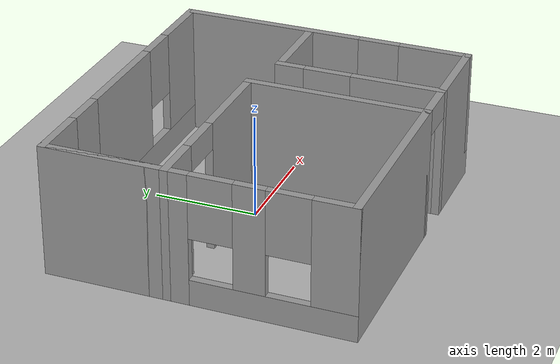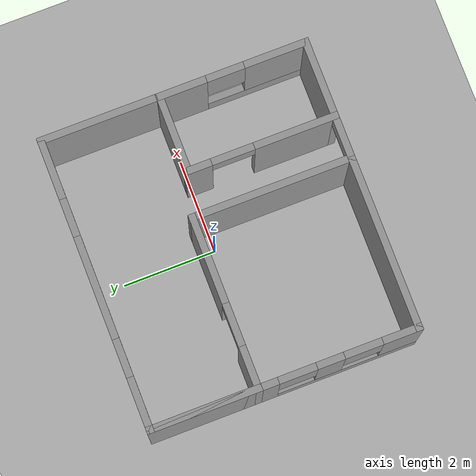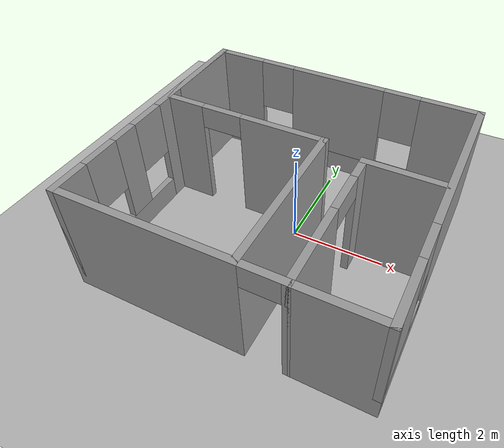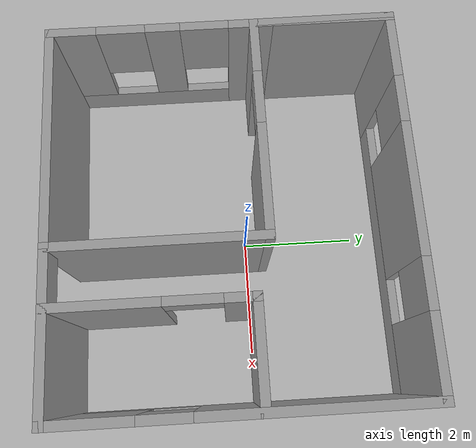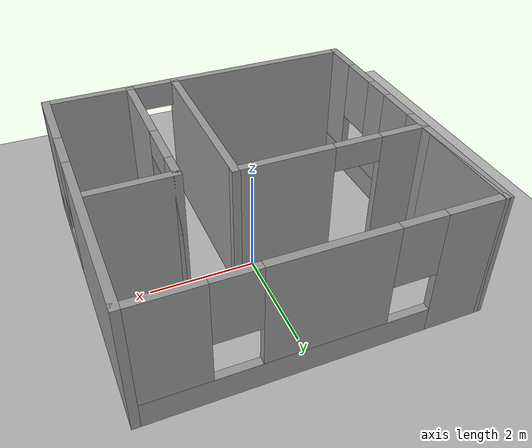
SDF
<sdf version="1.9">
 <world name="default">
  <gravity>0 0 -9.8</gravity>
  <magnetic_field>6e-06 2.3e-05 -4.2e-05</magnetic_field>
  <atmosphere type="adiabatic"/>
  <physics type="ode">
   <max_step_size>0.001</max_step_size>
   <real_time_factor>1</real_time_factor>
   <real_time_update_rate>1000</real_time_update_rate>
  </physics>
  <scene><ambient>0.4 0.4 0.4 1</ambient><background>0.7 0.7 0.7 1</background><shadows>true</shadows></scene>
  <model name="Untitled">
   <pose>-0.118681 -0.255136 0 0 -0 0</pose>
   <link name="Wall_0">
    <pose>-3.05 0 0 0 0 -1.5708</pose>
    <visual name="Wall_0_Visual_0">
     <pose>-1.5034 0 1.25 0 -0 0</pose>
     <geometry><box><size>2.7432 0.15 2.5</size></box></geometry>
     <material>
      <script><uri>file://media/materials/scripts/gazebo.material</uri><name>Gazebo/Grey</name></script>
      <ambient>1 1 1 1</ambient>
     </material>
     <meta><layer>0</layer></meta>
    </visual>
    <collision name="Wall_0_Collision_0">
     <geometry><box><size>2.7432 0.15 2.5</size></box></geometry>
     <pose>-1.5034 0 1.25 0 -0 0</pose>
    </collision>
    <visual name="Wall_0_Visual_1">
     <pose>1.3716 0 0.25 0 -0 0</pose>
     <geometry><box><size>3.0068 0.15 0.5</size></box></geometry>
     <material>
      <script><uri>file://media/materials/scripts/gazebo.material</uri><name>Gazebo/Grey</name></script>
      <ambient>1 1 1 1</ambient>
     </material>
     <meta><layer>0</layer></meta>
    </visual>
    <collision name="Wall_0_Collision_1">
     <geometry><box><size>3.0068 0.15 0.5</size></box></geometry>
     <pose>1.3716 0 0.25 0 -0 0</pose>
    </collision>
    <visual name="Wall_0_Visual_2">
     <pose>0.9559 0 1.5 0 -0 0</pose>
     <geometry><box><size>0.5754 0.15 2</size></box></geometry>
     <material>
      <script><uri>file://media/materials/scripts/gazebo.material</uri><name>Gazebo/Grey</name></script>
      <ambient>1 1 1 1</ambient>
     </material>
     <meta><layer>0</layer></meta>
    </visual>
    <collision name="Wall_0_Collision_2">
     <geometry><box><size>0.5754 0.15 2</size></box></geometry>
     <pose>0.9559 0 1.5 0 -0 0</pose>
    </collision>
    <visual name="Wall_0_Visual_3">
     <pose>2.4593 0 1.5 0 -0 0</pose>
     <geometry><box><size>0.8314 0.15 2</size></box></geometry>
     <material>
      <script><uri>file://media/materials/scripts/gazebo.material</uri><name>Gazebo/Grey</name></script>
      <ambient>1 1 1 1</ambient>
     </material>
     <meta><layer>0</layer></meta>
    </visual>
    <collision name="Wall_0_Collision_3">
     <geometry><box><size>0.8314 0.15 2</size></box></geometry>
     <pose>2.4593 0 1.5 0 -0 0</pose>
    </collision>
    <visual name="Wall_0_Visual_4">
     <pose>0.2682 0 1.9 0 -0 0</pose>
     <geometry><box><size>0.8 0.15 1.2</size></box></geometry>
     <material>
      <script><uri>file://media/materials/scripts/gazebo.material</uri><name>Gazebo/Grey</name></script>
      <ambient>1 1 1 1</ambient>
     </material>
     <meta><layer>0</layer></meta>
    </visual>
    <collision name="Wall_0_Collision_4">
     <geometry><box><size>0.8 0.15 1.2</size></box></geometry>
     <pose>0.2682 0 1.9 0 -0 0</pose>
    </collision>
    <visual name="Wall_0_Visual_5">
     <pose>1.6436 0 1.9 0 -0 0</pose>
     <geometry><box><size>0.8 0.15 1.2</size></box></geometry>
     <material>
      <script><uri>file://media/materials/scripts/gazebo.material</uri><name>Gazebo/Grey</name></script>
      <ambient>1 1 1 1</ambient>
     </material>
     <meta><layer>0</layer></meta>
    </visual>
    <collision name="Wall_0_Collision_5">
     <geometry><box><size>0.8 0.15 1.2</size></box></geometry>
     <pose>1.6436 0 1.9 0 -0 0</pose>
    </collision>
    <inertial>
     <mass>1</mass>
     <inertia><ixx>1</ixx><ixy>0</ixy><ixz>0</ixz><iyy>1</iyy><iyz>0</iyz><izz>1</izz></inertia>
    </inertial>
   </link>
   <link name="Wall_1">
    <collision name="Wall_1_Collision">
     <geometry><box><size>3.75 0.15 2.5</size></box></geometry>
     <pose>0 0 1.25 0 -0 0</pose>
    </collision>
    <visual name="Wall_1_Visual">
     <pose>0 0 1.25 0 -0 0</pose>
     <geometry><box><size>3.75 0.15 2.5</size></box></geometry>
     <material>
      <script><uri>file://media/materials/scripts/gazebo.material</uri><name>Gazebo/Grey</name></script>
      <ambient>1 1 1 1</ambient>
     </material>
     <meta><layer>0</layer></meta>
    </visual>
    <pose>-1.25 -2.8 0 0 -0 0</pose>
    <inertial>
     <mass>1</mass>
     <inertia><ixx>1</ixx><ixy>0</ixy><ixz>0</ixz><iyy>1</iyy><iyz>0</iyz><izz>1</izz></inertia>
    </inertial>
   </link>
   <link name="Wall_11">
    <pose>1 -2.8 0 0 -0 0</pose>
    <visual name="Wall_11_Visual_0">
     <pose>-0.47585 0 1.25 0 -0 0</pose>
     <geometry><box><size>0.0983 0.15 2.5</size></box></geometry>
     <material>
      <script><uri>file://media/materials/scripts/gazebo.material</uri><name>Gazebo/Grey</name></script>
      <ambient>1 1 1 1</ambient>
     </material>
     <meta><layer>0</layer></meta>
    </visual>
    <collision name="Wall_11_Collision_0">
     <geometry><box><size>0.0983 0.15 2.5</size></box></geometry>
     <pose>-0.47585 0 1.25 0 -0 0</pose>
    </collision>
    <visual name="Wall_11_Visual_1">
     <pose>0.49915 0 1.25 0 -0 0</pose>
     <geometry><box><size>0.0517 0.15 2.5</size></box></geometry>
     <material>
      <script><uri>file://media/materials/scripts/gazebo.material</uri><name>Gazebo/Grey</name></script>
      <ambient>1 1 1 1</ambient>
     </material>
     <meta><layer>0</layer></meta>
    </visual>
    <collision name="Wall_11_Collision_1">
     <geometry><box><size>0.0517 0.15 2.5</size></box></geometry>
     <pose>0.49915 0 1.25 0 -0 0</pose>
    </collision>
    <visual name="Wall_11_Visual_2">
     <pose>0.0233 0 2.25 0 -0 0</pose>
     <geometry><box><size>0.9 0.15 0.5</size></box></geometry>
     <material>
      <script><uri>file://media/materials/scripts/gazebo.material</uri><name>Gazebo/Grey</name></script>
      <ambient>1 1 1 1</ambient>
     </material>
     <meta><layer>0</layer></meta>
    </visual>
    <collision name="Wall_11_Collision_2">
     <geometry><box><size>0.9 0.15 0.5</size></box></geometry>
     <pose>0.0233 0 2.25 0 -0 0</pose>
    </collision>
    <inertial>
     <mass>1</mass>
     <inertia><ixx>1</ixx><ixy>0</ixy><ixz>0</ixz><iyy>1</iyy><iyz>0</iyz><izz>1</izz></inertia>
    </inertial>
   </link>
   <link name="Wall_2">
    <collision name="Wall_2_Collision">
     <geometry><box><size>3.5 0.15 2.5</size></box></geometry>
     <pose>0 0 1.25 0 -0 0</pose>
    </collision>
    <visual name="Wall_2_Visual">
     <pose>0 0 1.25 0 -0 0</pose>
     <geometry><box><size>3.5 0.15 2.5</size></box></geometry>
     <material>
      <script><uri>file://media/materials/scripts/gazebo.material</uri><name>Gazebo/Grey</name></script>
      <ambient>1 1 1 1</ambient>
     </material>
     <meta><layer>0</layer></meta>
    </visual>
    <pose>0.55 -1.125 0 0 -0 1.5708</pose>
    <inertial>
     <mass>1</mass>
     <inertia><ixx>1</ixx><ixy>0</ixy><ixz>0</ixz><iyy>1</iyy><iyz>0</iyz><izz>1</izz></inertia>
    </inertial>
   </link>
   <link name="Wall_3">
    <pose>-1.25 0.55 0 0 -0 3.14159</pose>
    <visual name="Wall_3_Visual_0">
     <pose>-0.930362 0 1.25 0 -0 0</pose>
     <geometry><box><size>1.88928 0.15 2.5</size></box></geometry>
     <material>
      <script><uri>file://media/materials/scripts/gazebo.material</uri><name>Gazebo/Grey</name></script>
      <ambient>1 1 1 1</ambient>
     </material>
     <meta><layer>0</layer></meta>
    </visual>
    <collision name="Wall_3_Collision_0">
     <geometry><box><size>1.88928 0.15 2.5</size></box></geometry>
     <pose>-0.930362 0 1.25 0 -0 0</pose>
    </collision>
    <visual name="Wall_3_Visual_1">
     <pose>1.39464 0 1.25 0 -0 0</pose>
     <geometry><box><size>0.960725 0.15 2.5</size></box></geometry>
     <material>
      <script><uri>file://media/materials/scripts/gazebo.material</uri><name>Gazebo/Grey</name></script>
      <ambient>1 1 1 1</ambient>
     </material>
     <meta><layer>0</layer></meta>
    </visual>
    <collision name="Wall_3_Collision_1">
     <geometry><box><size>0.960725 0.15 2.5</size></box></geometry>
     <pose>1.39464 0 1.25 0 -0 0</pose>
    </collision>
    <visual name="Wall_3_Visual_2">
     <pose>0.464275 0 2.25 0 -0 0</pose>
     <geometry><box><size>0.9 0.15 0.5</size></box></geometry>
     <material>
      <script><uri>file://media/materials/scripts/gazebo.material</uri><name>Gazebo/Grey</name></script>
      <ambient>1 1 1 1</ambient>
     </material>
     <meta><layer>0</layer></meta>
    </visual>
    <collision name="Wall_3_Collision_2">
     <geometry><box><size>0.9 0.15 0.5</size></box></geometry>
     <pose>0.464275 0 2.25 0 -0 0</pose>
    </collision>
    <inertial>
     <mass>1</mass>
     <inertia><ixx>1</ixx><ixy>0</ixy><ixz>0</ixz><iyy>1</iyy><iyz>0</iyz><izz>1</izz></inertia>
    </inertial>
   </link>
   <link name="Wall_4">
    <collision name="Wall_4_Collision">
     <geometry><box><size>2.4 0.15 2.5</size></box></geometry>
     <pose>0 0 1.25 0 -0 0</pose>
    </collision>
    <visual name="Wall_4_Visual">
     <pose>0 0 1.25 0 -0 0</pose>
     <geometry><box><size>2.4 0.15 2.5</size></box></geometry>
     <material>
      <script><uri>file://media/materials/scripts/gazebo.material</uri><name>Gazebo/Grey</name></script>
      <ambient>1 1 1 1</ambient>
     </material>
     <meta><layer>0</layer></meta>
    </visual>
    <pose>-3.05 1.675 0 0 -0 1.5708</pose>
    <inertial>
     <mass>1</mass>
     <inertia><ixx>1</ixx><ixy>0</ixy><ixz>0</ixz><iyy>1</iyy><iyz>0</iyz><izz>1</izz></inertia>
    </inertial>
   </link>
   <link name="Wall_5">
    <pose>0 2.8 0 0 -0 0</pose>
    <visual name="Wall_5_Visual_0">
     <pose>-2.54029 0 1.25 0 -0 0</pose>
     <geometry><box><size>1.16942 0.15 2.5</size></box></geometry>
     <material>
      <script><uri>file://media/materials/scripts/gazebo.material</uri><name>Gazebo/Grey</name></script>
      <ambient>1 1 1 1</ambient>
     </material>
     <meta><layer>0</layer></meta>
    </visual>
    <collision name="Wall_5_Collision_0">
     <geometry><box><size>1.16942 0.15 2.5</size></box></geometry>
     <pose>-2.54029 0 1.25 0 -0 0</pose>
    </collision>
    <visual name="Wall_5_Visual_1">
     <pose>0.584713 0 0.25 0 -0 0</pose>
     <geometry><box><size>5.08057 0.15 0.5</size></box></geometry>
     <material>
      <script><uri>file://media/materials/scripts/gazebo.material</uri><name>Gazebo/Grey</name></script>
      <ambient>1 1 1 1</ambient>
     </material>
     <meta><layer>0</layer></meta>
    </visual>
    <collision name="Wall_5_Collision_1">
     <geometry><box><size>5.08057 0.15 0.5</size></box></geometry>
     <pose>0.584713 0 0.25 0 -0 0</pose>
    </collision>
    <visual name="Wall_5_Visual_2">
     <pose>-0.074375 0 1.5 0 -0 0</pose>
     <geometry><box><size>2.1624 0.15 2</size></box></geometry>
     <material>
      <script><uri>file://media/materials/scripts/gazebo.material</uri><name>Gazebo/Grey</name></script>
      <ambient>1 1 1 1</ambient>
     </material>
     <meta><layer>0</layer></meta>
    </visual>
    <collision name="Wall_5_Collision_2">
     <geometry><box><size>2.1624 0.15 2</size></box></geometry>
     <pose>-0.074375 0 1.5 0 -0 0</pose>
    </collision>
    <visual name="Wall_5_Visual_3">
     <pose>2.46591 0 1.5 0 -0 0</pose>
     <geometry><box><size>1.31818 0.15 2</size></box></geometry>
     <material>
      <script><uri>file://media/materials/scripts/gazebo.material</uri><name>Gazebo/Grey</name></script>
      <ambient>1 1 1 1</ambient>
     </material>
     <meta><layer>0</layer></meta>
    </visual>
    <collision name="Wall_5_Collision_3">
     <geometry><box><size>1.31818 0.15 2</size></box></geometry>
     <pose>2.46591 0 1.5 0 -0 0</pose>
    </collision>
    <visual name="Wall_5_Visual_4">
     <pose>-1.55557 0 1.9 0 -0 0</pose>
     <geometry><box><size>0.8 0.15 1.2</size></box></geometry>
     <material>
      <script><uri>file://media/materials/scripts/gazebo.material</uri><name>Gazebo/Grey</name></script>
      <ambient>1 1 1 1</ambient>
     </material>
     <meta><layer>0</layer></meta>
    </visual>
    <collision name="Wall_5_Collision_4">
     <geometry><box><size>0.8 0.15 1.2</size></box></geometry>
     <pose>-1.55557 0 1.9 0 -0 0</pose>
    </collision>
    <visual name="Wall_5_Visual_5">
     <pose>1.40682 0 1.9 0 -0 0</pose>
     <geometry><box><size>0.8 0.15 1.2</size></box></geometry>
     <material>
      <script><uri>file://media/materials/scripts/gazebo.material</uri><name>Gazebo/Grey</name></script>
      <ambient>1 1 1 1</ambient>
     </material>
     <meta><layer>0</layer></meta>
    </visual>
    <collision name="Wall_5_Collision_5">
     <geometry><box><size>0.8 0.15 1.2</size></box></geometry>
     <pose>1.40682 0 1.9 0 -0 0</pose>
    </collision>
    <inertial>
     <mass>1</mass>
     <inertia><ixx>1</ixx><ixy>0</ixy><ixz>0</ixz><iyy>1</iyy><iyz>0</iyz><izz>1</izz></inertia>
    </inertial>
   </link>
   <link name="Wall_6">
    <pose>3.05 0 0 0 0 -1.5708</pose>
    <visual name="Wall_6_Visual_0">
     <pose>-1.09343 0 1.25 0 -0 0</pose>
     <geometry><box><size>3.56315 0.15 2.5</size></box></geometry>
     <material>
      <script><uri>file://media/materials/scripts/gazebo.material</uri><name>Gazebo/Grey</name></script>
      <ambient>1 1 1 1</ambient>
     </material>
     <meta><layer>0</layer></meta>
    </visual>
    <collision name="Wall_6_Collision_0">
     <geometry><box><size>3.56315 0.15 2.5</size></box></geometry>
     <pose>-1.09343 0 1.25 0 -0 0</pose>
    </collision>
    <visual name="Wall_6_Visual_1">
     <pose>1.78157 0 0.25 0 -0 0</pose>
     <geometry><box><size>2.18685 0.15 0.5</size></box></geometry>
     <material>
      <script><uri>file://media/materials/scripts/gazebo.material</uri><name>Gazebo/Grey</name></script>
      <ambient>1 1 1 1</ambient>
     </material>
     <meta><layer>0</layer></meta>
    </visual>
    <collision name="Wall_6_Collision_1">
     <geometry><box><size>2.18685 0.15 0.5</size></box></geometry>
     <pose>1.78157 0 0.25 0 -0 0</pose>
    </collision>
    <visual name="Wall_6_Visual_2">
     <pose>2.18158 0 1.5 0 -0 0</pose>
     <geometry><box><size>1.38685 0.15 2</size></box></geometry>
     <material>
      <script><uri>file://media/materials/scripts/gazebo.material</uri><name>Gazebo/Grey</name></script>
      <ambient>1 1 1 1</ambient>
     </material>
     <meta><layer>0</layer></meta>
    </visual>
    <collision name="Wall_6_Collision_2">
     <geometry><box><size>1.38685 0.15 2</size></box></geometry>
     <pose>2.18158 0 1.5 0 -0 0</pose>
    </collision>
    <visual name="Wall_6_Visual_3">
     <pose>1.08815 0 1.9 0 -0 0</pose>
     <geometry><box><size>0.8 0.15 1.2</size></box></geometry>
     <material>
      <script><uri>file://media/materials/scripts/gazebo.material</uri><name>Gazebo/Grey</name></script>
      <ambient>1 1 1 1</ambient>
     </material>
     <meta><layer>0</layer></meta>
    </visual>
    <collision name="Wall_6_Collision_3">
     <geometry><box><size>0.8 0.15 1.2</size></box></geometry>
     <pose>1.08815 0 1.9 0 -0 0</pose>
    </collision>
    <inertial>
     <mass>1</mass>
     <inertia><ixx>1</ixx><ixy>0</ixy><ixz>0</ixz><iyy>1</iyy><iyz>0</iyz><izz>1</izz></inertia>
    </inertial>
   </link>
   <link name="Wall_7">
    <collision name="Wall_7_Collision">
     <geometry><box><size>1.75 0.15 2.5</size></box></geometry>
     <pose>0 0 1.25 0 -0 0</pose>
    </collision>
    <visual name="Wall_7_Visual">
     <pose>0 0 1.25 0 -0 0</pose>
     <geometry><box><size>1.75 0.15 2.5</size></box></geometry>
     <material>
      <script><uri>file://media/materials/scripts/gazebo.material</uri><name>Gazebo/Grey</name></script>
      <ambient>1 1 1 1</ambient>
     </material>
     <meta><layer>0</layer></meta>
    </visual>
    <pose>2.25 -2.8 0 0 -0 3.14159</pose>
    <inertial>
     <mass>1</mass>
     <inertia><ixx>1</ixx><ixy>0</ixy><ixz>0</ixz><iyy>1</iyy><iyz>0</iyz><izz>1</izz></inertia>
    </inertial>
   </link>
   <link name="Wall_8">
    <pose>1.45 -1.25 0 0 -0 1.5708</pose>
    <visual name="Wall_8_Visual_0">
     <pose>-0.73175 0 1.25 0 -0 0</pose>
     <geometry><box><size>1.7865 0.15 2.5</size></box></geometry>
     <material>
      <script><uri>file://media/materials/scripts/gazebo.material</uri><name>Gazebo/Grey</name></script>
      <ambient>1 1 1 1</ambient>
     </material>
     <meta><layer>0</layer></meta>
    </visual>
    <collision name="Wall_8_Collision_0">
     <geometry><box><size>1.7865 0.15 2.5</size></box></geometry>
     <pose>-0.73175 0 1.25 0 -0 0</pose>
    </collision>
    <visual name="Wall_8_Visual_1">
     <pose>1.34325 0 1.25 0 -0 0</pose>
     <geometry><box><size>0.5635 0.15 2.5</size></box></geometry>
     <material>
      <script><uri>file://media/materials/scripts/gazebo.material</uri><name>Gazebo/Grey</name></script>
      <ambient>1 1 1 1</ambient>
     </material>
     <meta><layer>0</layer></meta>
    </visual>
    <collision name="Wall_8_Collision_1">
     <geometry><box><size>0.5635 0.15 2.5</size></box></geometry>
     <pose>1.34325 0 1.25 0 -0 0</pose>
    </collision>
    <visual name="Wall_8_Visual_2">
     <pose>0.6115 0 2.25 0 -0 0</pose>
     <geometry><box><size>0.9 0.15 0.5</size></box></geometry>
     <material>
      <script><uri>file://media/materials/scripts/gazebo.material</uri><name>Gazebo/Grey</name></script>
      <ambient>1 1 1 1</ambient>
     </material>
     <meta><layer>0</layer></meta>
    </visual>
    <collision name="Wall_8_Collision_2">
     <geometry><box><size>0.9 0.15 0.5</size></box></geometry>
     <pose>0.6115 0 2.25 0 -0 0</pose>
    </collision>
    <inertial>
     <mass>1</mass>
     <inertia><ixx>1</ixx><ixy>0</ixy><ixz>0</ixz><iyy>1</iyy><iyz>0</iyz><izz>1</izz></inertia>
    </inertial>
   </link>
   <link name="Wall_9">
    <collision name="Wall_9_Collision">
     <geometry><box><size>1.75 0.15 2.5</size></box></geometry>
     <pose>0 0 1.25 0 -0 0</pose>
    </collision>
    <visual name="Wall_9_Visual">
     <pose>0 0 1.25 0 -0 0</pose>
     <geometry><box><size>1.75 0.15 2.5</size></box></geometry>
     <material>
      <script><uri>file://media/materials/scripts/gazebo.material</uri><name>Gazebo/Grey</name></script>
      <ambient>1 1 1 1</ambient>
     </material>
     <meta><layer>0</layer></meta>
    </visual>
    <pose>2.25 0.3 0 0 -0 0</pose>
    <inertial>
     <mass>1</mass>
     <inertia><ixx>1</ixx><ixy>0</ixy><ixz>0</ixz><iyy>1</iyy><iyz>0</iyz><izz>1</izz></inertia>
    </inertial>
   </link>
   <static>true</static>
  </model>
  <model name="ground_plane">
   <static>true</static>
   <link name="link">
    <collision name="collision">
     <geometry><plane><normal>0 0 1</normal><size>100 100</size></plane></geometry>
     <surface><friction><ode><mu>100</mu><mu2>50</mu2></ode></friction></surface>
    </collision>
    <visual name="visual">
     <cast_shadows>false</cast_shadows>
     <geometry><plane><normal>0 0 1</normal><size>100 100</size></plane></geometry>
     <material>
      <ambient>0.3 0.3 0.3 1</ambient>
      <diffuse>0.7 0.7 0.7 1</diffuse>
      <specular>0.01 0.01 0.01 1</specular>
     </material>
    </visual>
    <inertial>
     <mass>1</mass>
     <inertia><ixx>1</ixx><ixy>0</ixy><ixz>0</ixz><iyy>1</iyy><iyz>0</iyz><izz>1</izz></inertia>
    </inertial>
   </link>
   <pose>3.17783 -1.21948 0 0 -0 0</pose>
  </model>
  <light name="sun" type="directional">
   <pose>45.7044 12.7509 10 0 -0 0</pose>
   <intensity>1</intensity>
   <direction>-0.5 0.1 -0.9</direction>
   <diffuse>0.8 0.8 0.8 1</diffuse>
   <specular>0.2 0.2 0.2 1</specular>
   <attenuation>
    <range>1000</range>
    <linear>0.01</linear>
    <constant>0.90000000000000002</constant>
    <quadratic>0.001</quadratic>
   </attenuation>
   <spot><inner_angle>0</inner_angle><outer_angle>0</outer_angle><falloff>0</falloff></spot>
  </light>
 </world>
</sdf>
